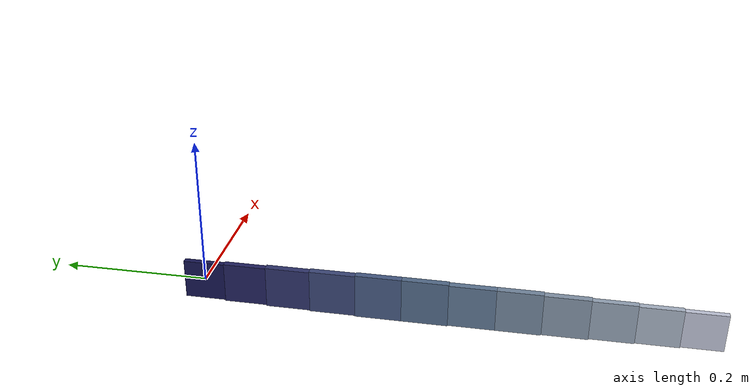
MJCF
<mujoco model="Eel3D_RibbonFish_YawRoll">
    <compiler angle="degree" inertiafromgeom="true"/>
    <option timestep="0.01" gravity="0 0 0" integrator="RK4"/>

    <default>
        <joint damping="0.2" stiffness="0" armature="0.02"/>
        <motor ctrlrange="-1 1" ctrllimited="true"/>
        <geom solref="0.002 1" solimp="0.9 0.95 0.001" contype="0" conaffinity="0"/>
    </default>

    <asset>
        <!-- Gradient colors: dark head → light tail (12 segments) -->
        <material name="seg1_mat"  rgba="0.10 0.10 0.35 1"/>
        <material name="seg2_mat"  rgba="0.15 0.15 0.40 1"/>
        <material name="seg3_mat"  rgba="0.20 0.22 0.45 1"/>
        <material name="seg4_mat"  rgba="0.25 0.30 0.50 1"/>
        <material name="seg5_mat"  rgba="0.30 0.38 0.55 1"/>
        <material name="seg6_mat"  rgba="0.35 0.45 0.58 1"/>
        <material name="seg7_mat"  rgba="0.40 0.50 0.62 1"/>
        <material name="seg8_mat"  rgba="0.48 0.56 0.66 1"/>
        <material name="seg9_mat"  rgba="0.55 0.62 0.70 1"/>
        <material name="seg10_mat" rgba="0.62 0.68 0.76 1"/>
        <material name="seg11_mat" rgba="0.70 0.75 0.82 1"/>
        <material name="seg12_mat" rgba="0.80 0.82 0.90 1"/>
    </asset>

    <worldbody>
        <!-- 12-segment eel with tapered body shape                     -->
        <!-- Head(A=seg1, B=seg2): small, restricted roll               -->
        <!-- Mid-body(seg4-seg7): largest cross-section                 -->
        <!-- Tail(seg10-seg12): smallest, flexible                      -->
        <!-- 11 joint pairs = 22 joints total (yaw + roll)              -->

        <!-- ========== Segment 1 — HEAD (A) ========== -->
        <body name="seg1" pos="0 0 0">
            <freejoint name="root_joint"/>

            <!-- Head (A): slightly smaller than mid-body -->
            <geom name="seg1_geom" type="box"
                  size="0.004 0.028 0.027"
                  pos="0 0 0"
                  material="seg1_mat"
                  density="5000"/>

            <!-- ========== Segment 2 — NECK (B) ========== -->
            <!-- A-B joint: yaw ±20°, roll ±10° (very restricted for head stability) -->
            <body name="seg2" pos="0 -0.028 0">
                <joint name="joint1_yaw" type="hinge" axis="0 0 1" limited="true" range="-20 20"/>
                <joint name="joint1_roll" type="hinge" axis="0 1 0" limited="true" range="-10 10"/>

                <geom name="seg2_geom" type="box"
                      size="0.0045 0.029 0.028"
                      pos="0 -0.029 0"
                      material="seg2_mat"
                      density="4800"/>

                <!-- ========== Segment 3 — FRONT BODY ========== -->
                <body name="seg3" pos="0 -0.058 0">
                    <joint name="joint2_yaw" type="hinge" axis="0 0 1" limited="true" range="-30 30"/>
                    <joint name="joint2_roll" type="hinge" axis="0 1 0" limited="true" range="-20 20"/>

                    <geom name="seg3_geom" type="box"
                          size="0.005 0.030 0.029"
                          pos="0 -0.030 0"
                          material="seg3_mat"
                          density="4600"/>

                    <!-- ========== Segment 4 — FRONT-MID BODY ========== -->
                    <body name="seg4" pos="0 -0.060 0">
                        <joint name="joint3_yaw" type="hinge" axis="0 0 1" limited="true" range="-35 35"/>
                        <joint name="joint3_roll" type="hinge" axis="0 1 0" limited="true" range="-22 22"/>

                        <geom name="seg4_geom" type="box"
                              size="0.005 0.031 0.030"
                              pos="0 -0.031 0"
                              material="seg4_mat"
                              density="4400"/>

                        <!-- ========== Segment 5 — MID BODY (widest) ========== -->
                        <body name="seg5" pos="0 -0.062 0">
                            <joint name="joint4_yaw" type="hinge" axis="0 0 1" limited="true" range="-35 35"/>
                            <joint name="joint4_roll" type="hinge" axis="0 1 0" limited="true" range="-25 25"/>

                            <geom name="seg5_geom" type="box"
                                  size="0.005 0.031 0.031"
                                  pos="0 -0.031 0"
                                  material="seg5_mat"
                                  density="4200"/>

                            <!-- ========== Segment 6 — MID BODY (widest) ========== -->
                            <body name="seg6" pos="0 -0.062 0">
                                <joint name="joint5_yaw" type="hinge" axis="0 0 1" limited="true" range="-35 35"/>
                                <joint name="joint5_roll" type="hinge" axis="0 1 0" limited="true" range="-25 25"/>

                                <geom name="seg6_geom" type="box"
                                      size="0.005 0.031 0.031"
                                      pos="0 -0.031 0"
                                      material="seg6_mat"
                                      density="4000"/>

                                <!-- ========== Segment 7 — MID-REAR BODY ========== -->
                                <body name="seg7" pos="0 -0.062 0">
                                    <joint name="joint6_yaw" type="hinge" axis="0 0 1" limited="true" range="-40 40"/>
                                    <joint name="joint6_roll" type="hinge" axis="0 1 0" limited="true" range="-27 27"/>

                                    <geom name="seg7_geom" type="box"
                                          size="0.005 0.031 0.030"
                                          pos="0 -0.031 0"
                                          material="seg7_mat"
                                          density="3800"/>

                                    <!-- ========== Segment 8 — REAR BODY ========== -->
                                    <body name="seg8" pos="0 -0.062 0">
                                        <joint name="joint7_yaw" type="hinge" axis="0 0 1" limited="true" range="-40 40"/>
                                        <joint name="joint7_roll" type="hinge" axis="0 1 0" limited="true" range="-27 27"/>

                                        <geom name="seg8_geom" type="box"
                                              size="0.005 0.030 0.030"
                                              pos="0 -0.030 0"
                                              material="seg8_mat"
                                              density="3500"/>

                                        <!-- ========== Segment 9 — REAR BODY ========== -->
                                        <body name="seg9" pos="0 -0.060 0">
                                            <joint name="joint8_yaw" type="hinge" axis="0 0 1" limited="true" range="-42 42"/>
                                            <joint name="joint8_roll" type="hinge" axis="0 1 0" limited="true" range="-28 28"/>

                                            <geom name="seg9_geom" type="box"
                                                  size="0.005 0.030 0.029"
                                                  pos="0 -0.030 0"
                                                  material="seg9_mat"
                                                  density="3200"/>

                                            <!-- ========== Segment 10 — PRE-TAIL ========== -->
                                            <body name="seg10" pos="0 -0.060 0">
                                                <joint name="joint9_yaw" type="hinge" axis="0 0 1" limited="true" range="-45 45"/>
                                                <joint name="joint9_roll" type="hinge" axis="0 1 0" limited="true" range="-28 28"/>

                                                <geom name="seg10_geom" type="box"
                                                      size="0.0045 0.029 0.028"
                                                      pos="0 -0.029 0"
                                                      material="seg10_mat"
                                                      density="2800"/>

                                                <!-- ========== Segment 11 — TAIL MID ========== -->
                                                <body name="seg11" pos="0 -0.058 0">
                                                    <joint name="joint10_yaw" type="hinge" axis="0 0 1" limited="true" range="-48 48"/>
                                                    <joint name="joint10_roll" type="hinge" axis="0 1 0" limited="true" range="-30 30"/>

                                                    <geom name="seg11_geom" type="box"
                                                          size="0.0045 0.028 0.027"
                                                          pos="0 -0.028 0"
                                                          material="seg11_mat"
                                                          density="2500"/>

                                                    <!-- ========== Segment 12 — TAIL TIP ========== -->
                                                    <body name="seg12" pos="0 -0.056 0">
                                                        <joint name="joint11_yaw" type="hinge" axis="0 0 1" limited="true" range="-50 50"/>
                                                        <joint name="joint11_roll" type="hinge" axis="0 1 0" limited="true" range="-30 30"/>

                                                        <geom name="seg12_geom" type="box"
                                                              size="0.004 0.027 0.026"
                                                              pos="0 -0.027 0"
                                                              material="seg12_mat"
                                                              density="2200"/>
                                                    </body>
                                                </body>
                                            </body>
                                        </body>
                                    </body>
                                </body>
                            </body>
                        </body>
                    </body>
                </body>
            </body>
        </body>

        <light directional="true" diffuse="0.9 0.9 0.9" pos="0 0 3" dir="0 0 -1"/>
    </worldbody>

    <actuator>
        <!-- 22 position actuators (11 joint pairs: yaw + roll) -->
        <!-- Head A-B joint (joint1): very stiff, limited roll for head stability -->
        <!-- kp increases for head (precise control), decreases toward tail (flexible) -->

        <!-- Joint 1 (A-B head-neck): restricted roll, stiff -->
        <position name="pos1_yaw"  joint="joint1_yaw"  kp="3.0" kv="0.3" ctrlrange="-0.349 0.349" forcerange="-1.2 1.2"/>
        <position name="pos1_roll" joint="joint1_roll" kp="4.0" kv="0.4" ctrlrange="-0.175 0.175" forcerange="-0.8 0.8"/>

        <!-- Joint 2 (neck-front body): moderate roll allowed -->
        <position name="pos2_yaw"  joint="joint2_yaw"  kp="2.5" kv="0.25" ctrlrange="-0.524 0.524" forcerange="-1.0 1.0"/>
        <position name="pos2_roll" joint="joint2_roll" kp="3.0" kv="0.3"  ctrlrange="-0.349 0.349" forcerange="-1.2 1.2"/>

        <!-- Joint 3 -->
        <position name="pos3_yaw"  joint="joint3_yaw"  kp="2.0" kv="0.2" ctrlrange="-0.611 0.611" forcerange="-1.0 1.0"/>
        <position name="pos3_roll" joint="joint3_roll" kp="2.5" kv="0.25" ctrlrange="-0.384 0.384" forcerange="-1.2 1.2"/>

        <!-- Joint 4 -->
        <position name="pos4_yaw"  joint="joint4_yaw"  kp="2.0" kv="0.2" ctrlrange="-0.611 0.611" forcerange="-1.0 1.0"/>
        <position name="pos4_roll" joint="joint4_roll" kp="2.5" kv="0.25" ctrlrange="-0.436 0.436" forcerange="-1.2 1.2"/>

        <!-- Joint 5 -->
        <position name="pos5_yaw"  joint="joint5_yaw"  kp="2.0" kv="0.2" ctrlrange="-0.611 0.611" forcerange="-1.0 1.0"/>
        <position name="pos5_roll" joint="joint5_roll" kp="2.5" kv="0.25" ctrlrange="-0.436 0.436" forcerange="-1.2 1.2"/>

        <!-- Joint 6 -->
        <position name="pos6_yaw"  joint="joint6_yaw"  kp="2.0" kv="0.2" ctrlrange="-0.698 0.698" forcerange="-1.0 1.0"/>
        <position name="pos6_roll" joint="joint6_roll" kp="2.0" kv="0.2"  ctrlrange="-0.471 0.471" forcerange="-1.0 1.0"/>

        <!-- Joint 7 -->
        <position name="pos7_yaw"  joint="joint7_yaw"  kp="2.0" kv="0.2" ctrlrange="-0.698 0.698" forcerange="-1.0 1.0"/>
        <position name="pos7_roll" joint="joint7_roll" kp="2.0" kv="0.2"  ctrlrange="-0.471 0.471" forcerange="-1.0 1.0"/>

        <!-- Joint 8 -->
        <position name="pos8_yaw"  joint="joint8_yaw"  kp="2.0" kv="0.2" ctrlrange="-0.733 0.733" forcerange="-1.0 1.0"/>
        <position name="pos8_roll" joint="joint8_roll" kp="2.0" kv="0.2"  ctrlrange="-0.489 0.489" forcerange="-1.0 1.0"/>

        <!-- Joint 9 -->
        <position name="pos9_yaw"  joint="joint9_yaw"  kp="2.0" kv="0.2" ctrlrange="-0.785 0.785" forcerange="-1.0 1.0"/>
        <position name="pos9_roll" joint="joint9_roll" kp="2.0" kv="0.2"  ctrlrange="-0.489 0.489" forcerange="-1.0 1.0"/>

        <!-- Joint 10 -->
        <position name="pos10_yaw"  joint="joint10_yaw"  kp="2.0" kv="0.2" ctrlrange="-0.838 0.838" forcerange="-1.0 1.0"/>
        <position name="pos10_roll" joint="joint10_roll" kp="2.0" kv="0.2"  ctrlrange="-0.524 0.524" forcerange="-1.0 1.0"/>

        <!-- Joint 11 (tail tip): most flexible -->
        <position name="pos11_yaw"  joint="joint11_yaw"  kp="2.0" kv="0.2" ctrlrange="-0.873 0.873" forcerange="-1.0 1.0"/>
        <position name="pos11_roll" joint="joint11_roll" kp="2.0" kv="0.2"  ctrlrange="-0.524 0.524" forcerange="-1.0 1.0"/>
    </actuator>
</mujoco>
